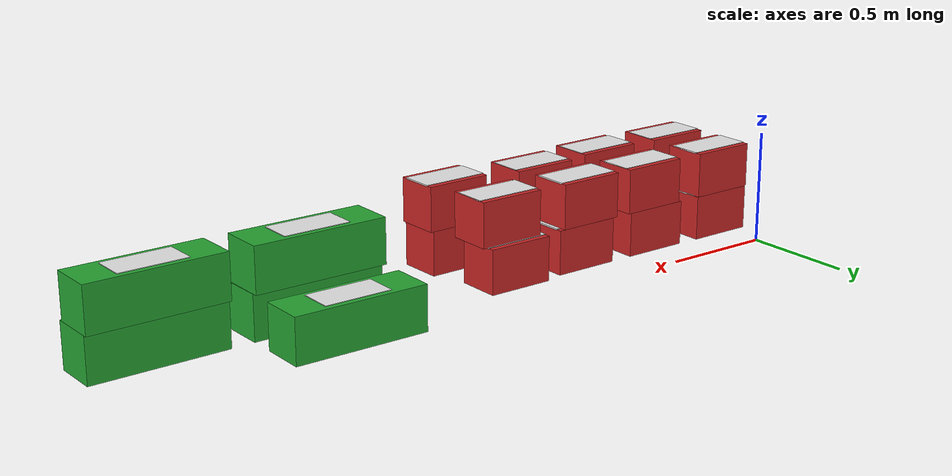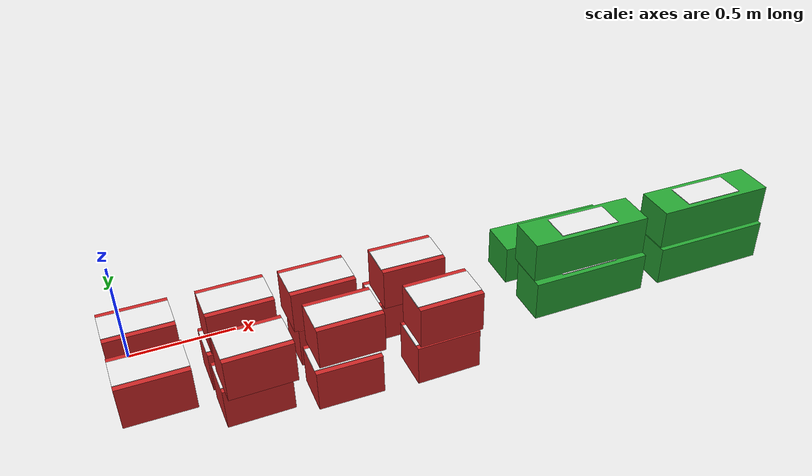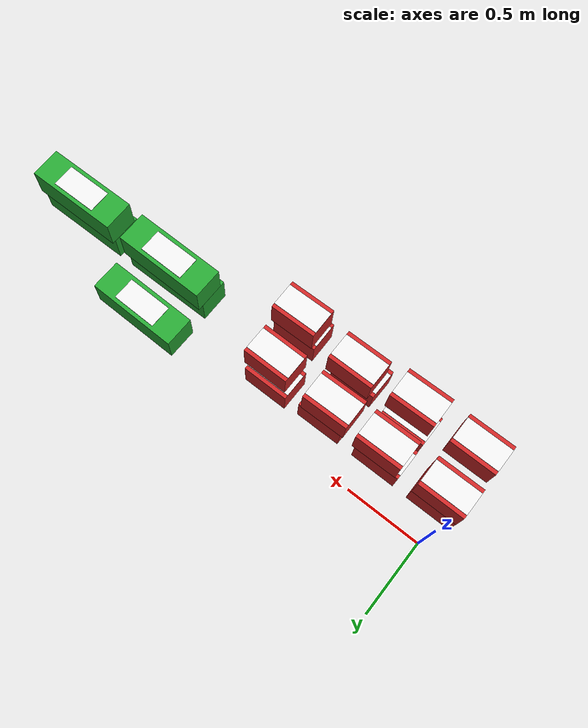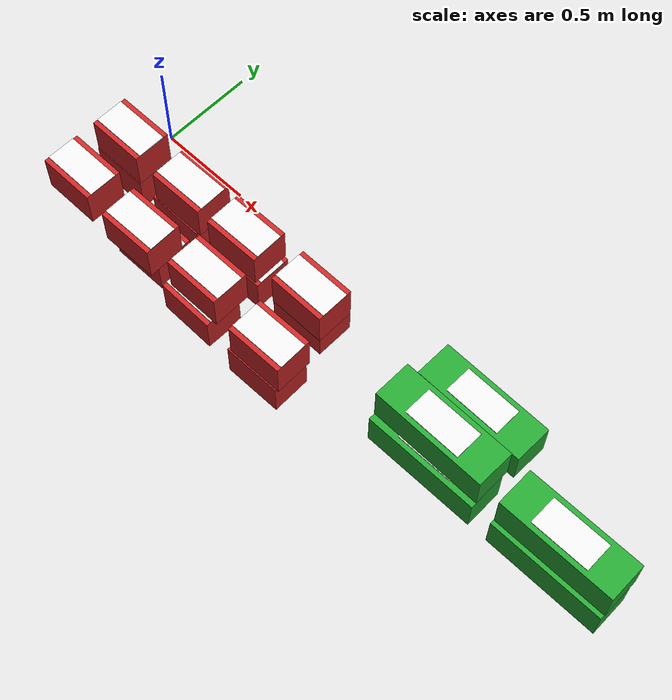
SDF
<sdf version="1.6">
 <world name="default">
  <model name="brick_red_0">
   <static>1</static>
   <link name="link">
    <pose>0 0 0.1 0 -0 0</pose>
    <inertial>
     <mass>1</mass>
     <inertia>
      <ixx>0.00252984</ixx>
      <ixy>0</ixy>
      <ixz>0</ixz>
      <iyy>0.046802</iyy>
      <iyz>0</iyz>
      <izz>0.046802</izz>
     </inertia>
    </inertial>
    <visual name="main_box">
     <geometry><box><size>0.3 0.2 0.2</size></box></geometry>
     <material>
      <script><uri>file://media/materials/scripts/gazebo.material</uri><name>Gazebo/Red</name></script>
     </material>
    </visual>
    <visual name="white_plate">
     <pose>0 0 0.1 0 -0 0</pose>
     <geometry><box><size>0.3 0.15 0.006</size></box></geometry>
     <material>
      <script><uri>file://media/materials/scripts/gazebo.material</uri><name>Gazebo/White</name></script>
     </material>
    </visual>
    <collision name="collision"><geometry><box><size>0.3 0.2 0.2</size></box></geometry></collision>
   </link>
   <pose>0.059245 -0.274277 -0 0 -0 0.000913</pose>
  </model>
  <model name="brick_red_1">
   <static>1</static>
   <link name="link">
    <pose>0 0 0.1 0 -0 0</pose>
    <inertial>
     <mass>1</mass>
     <inertia>
      <ixx>0.00252984</ixx>
      <ixy>0</ixy>
      <ixz>0</ixz>
      <iyy>0.046802</iyy>
      <iyz>0</iyz>
      <izz>0.046802</izz>
     </inertia>
    </inertial>
    <visual name="main_box">
     <geometry><box><size>0.3 0.2 0.2</size></box></geometry>
     <material>
      <script><uri>file://media/materials/scripts/gazebo.material</uri><name>Gazebo/Red</name></script>
     </material>
    </visual>
    <visual name="white_plate">
     <pose>0 0 0.1 0 -0 0</pose>
     <geometry><box><size>0.3 0.15 0.006</size></box></geometry>
     <material>
      <script><uri>file://media/materials/scripts/gazebo.material</uri><name>Gazebo/White</name></script>
     </material>
    </visual>
    <collision name="collision"><geometry><box><size>0.3 0.2 0.2</size></box></geometry></collision>
   </link>
   <pose>0.059245 -0.270682 0.202 0 -0 0.00164</pose>
  </model>
  <model name="brick_red_3">
   <static>1</static>
   <link name="link">
    <pose>0 0 0.1 0 -0 0</pose>
    <inertial>
     <mass>1</mass>
     <inertia>
      <ixx>0.00252984</ixx>
      <ixy>0</ixy>
      <ixz>0</ixz>
      <iyy>0.046802</iyy>
      <iyz>0</iyz>
      <izz>0.046802</izz>
     </inertia>
    </inertial>
    <visual name="main_box">
     <geometry><box><size>0.3 0.2 0.2</size></box></geometry>
     <material>
      <script><uri>file://media/materials/scripts/gazebo.material</uri><name>Gazebo/Red</name></script>
     </material>
    </visual>
    <visual name="white_plate">
     <pose>0 0 0.1 0 -0 0</pose>
     <geometry><box><size>0.3 0.15 0.006</size></box></geometry>
     <material>
      <script><uri>file://media/materials/scripts/gazebo.material</uri><name>Gazebo/White</name></script>
     </material>
    </visual>
    <collision name="collision"><geometry><box><size>0.3 0.2 0.2</size></box></geometry></collision>
   </link>
   <pose>0.059245 -0.573208 0.202 0 0 -0.000976</pose>
  </model>
  <model name="brick_red_6">
   <static>1</static>
   <link name="link">
    <pose>0 0 0.1 0 -0 0</pose>
    <inertial>
     <mass>1</mass>
     <inertia>
      <ixx>0.00252984</ixx>
      <ixy>0</ixy>
      <ixz>0</ixz>
      <iyy>0.046802</iyy>
      <iyz>0</iyz>
      <izz>0.046802</izz>
     </inertia>
    </inertial>
    <visual name="main_box">
     <geometry><box><size>0.3 0.2 0.2</size></box></geometry>
     <material>
      <script><uri>file://media/materials/scripts/gazebo.material</uri><name>Gazebo/Red</name></script>
     </material>
    </visual>
    <visual name="white_plate">
     <pose>0 0 0.1 0 -0 0</pose>
     <geometry><box><size>0.3 0.15 0.006</size></box></geometry>
     <material>
      <script><uri>file://media/materials/scripts/gazebo.material</uri><name>Gazebo/White</name></script>
     </material>
    </visual>
    <collision name="collision"><geometry><box><size>0.3 0.2 0.2</size></box></geometry></collision>
   </link>
   <pose>0.458665 -0.278626 0 0 0 -0.000217</pose>
  </model>
  <model name="brick_red_7">
   <static>1</static>
   <link name="link">
    <pose>0 0 0.1 0 -0 0</pose>
    <inertial>
     <mass>1</mass>
     <inertia>
      <ixx>0.00252984</ixx>
      <ixy>0</ixy>
      <ixz>0</ixz>
      <iyy>0.046802</iyy>
      <iyz>0</iyz>
      <izz>0.046802</izz>
     </inertia>
    </inertial>
    <visual name="main_box">
     <geometry><box><size>0.3 0.2 0.2</size></box></geometry>
     <material>
      <script><uri>file://media/materials/scripts/gazebo.material</uri><name>Gazebo/Red</name></script>
     </material>
    </visual>
    <visual name="white_plate">
     <pose>0 0 0.1 0 -0 0</pose>
     <geometry><box><size>0.3 0.15 0.006</size></box></geometry>
     <material>
      <script><uri>file://media/materials/scripts/gazebo.material</uri><name>Gazebo/White</name></script>
     </material>
    </visual>
    <collision name="collision"><geometry><box><size>0.3 0.2 0.2</size></box></geometry></collision>
   </link>
   <pose>0.477688 -0.273226 0.202 0 -0 0.009959</pose>
  </model>
  <model name="brick_red_8">
   <static>1</static>
   <link name="link">
    <pose>0 0 0.1 0 -0 0</pose>
    <inertial>
     <mass>1</mass>
     <inertia>
      <ixx>0.00252984</ixx>
      <ixy>0</ixy>
      <ixz>0</ixz>
      <iyy>0.046802</iyy>
      <iyz>0</iyz>
      <izz>0.046802</izz>
     </inertia>
    </inertial>
    <visual name="main_box">
     <geometry><box><size>0.3 0.2 0.2</size></box></geometry>
     <material>
      <script><uri>file://media/materials/scripts/gazebo.material</uri><name>Gazebo/Red</name></script>
     </material>
    </visual>
    <visual name="white_plate">
     <pose>0 0 0.1 0 -0 0</pose>
     <geometry><box><size>0.3 0.15 0.006</size></box></geometry>
     <material>
      <script><uri>file://media/materials/scripts/gazebo.material</uri><name>Gazebo/White</name></script>
     </material>
    </visual>
    <collision name="collision"><geometry><box><size>0.3 0.2 0.2</size></box></geometry></collision>
   </link>
   <pose>0.460918 -0.526437 -0 0 -0 0.006094</pose>
  </model>
  <model name="brick_red_9">
   <static>1</static>
   <link name="link">
    <pose>0 0 0.1 0 -0 0</pose>
    <inertial>
     <mass>1</mass>
     <inertia>
      <ixx>0.00252984</ixx>
      <ixy>0</ixy>
      <ixz>0</ixz>
      <iyy>0.046802</iyy>
      <iyz>0</iyz>
      <izz>0.046802</izz>
     </inertia>
    </inertial>
    <visual name="main_box">
     <geometry><box><size>0.3 0.2 0.2</size></box></geometry>
     <material>
      <script><uri>file://media/materials/scripts/gazebo.material</uri><name>Gazebo/Red</name></script>
     </material>
    </visual>
    <visual name="white_plate">
     <pose>0 0 0.1 0 -0 0</pose>
     <geometry><box><size>0.3 0.15 0.006</size></box></geometry>
     <material>
      <script><uri>file://media/materials/scripts/gazebo.material</uri><name>Gazebo/White</name></script>
     </material>
    </visual>
    <collision name="collision"><geometry><box><size>0.3 0.2 0.2</size></box></geometry></collision>
   </link>
   <pose>0.473201 -0.583135 0.202 0 -0 0.014849</pose>
  </model>
  <model name="brick_red_12">
   <static>1</static>
   <link name="link">
    <pose>0 0 0.1 0 -0 0</pose>
    <inertial>
     <mass>1</mass>
     <inertia>
      <ixx>0.00252984</ixx>
      <ixy>0</ixy>
      <ixz>0</ixz>
      <iyy>0.046802</iyy>
      <iyz>0</iyz>
      <izz>0.046802</izz>
     </inertia>
    </inertial>
    <visual name="main_box">
     <geometry><box><size>0.3 0.2 0.2</size></box></geometry>
     <material>
      <script><uri>file://media/materials/scripts/gazebo.material</uri><name>Gazebo/Red</name></script>
     </material>
    </visual>
    <visual name="white_plate">
     <pose>0 0 0.1 0 -0 0</pose>
     <geometry><box><size>0.3 0.15 0.006</size></box></geometry>
     <material>
      <script><uri>file://media/materials/scripts/gazebo.material</uri><name>Gazebo/White</name></script>
     </material>
    </visual>
    <collision name="collision"><geometry><box><size>0.3 0.2 0.2</size></box></geometry></collision>
   </link>
   <pose>0.863916 -0.277629 -0 0 -0 0.005086</pose>
  </model>
  <model name="brick_red_13">
   <static>1</static>
   <link name="link">
    <pose>0 0 0.1 0 -0 0</pose>
    <inertial>
     <mass>1</mass>
     <inertia>
      <ixx>0.00252984</ixx>
      <ixy>0</ixy>
      <ixz>0</ixz>
      <iyy>0.046802</iyy>
      <iyz>0</iyz>
      <izz>0.046802</izz>
     </inertia>
    </inertial>
    <visual name="main_box">
     <geometry><box><size>0.3 0.2 0.2</size></box></geometry>
     <material>
      <script><uri>file://media/materials/scripts/gazebo.material</uri><name>Gazebo/Red</name></script>
     </material>
    </visual>
    <visual name="white_plate">
     <pose>0 0 0.1 0 -0 0</pose>
     <geometry><box><size>0.3 0.15 0.006</size></box></geometry>
     <material>
      <script><uri>file://media/materials/scripts/gazebo.material</uri><name>Gazebo/White</name></script>
     </material>
    </visual>
    <collision name="collision"><geometry><box><size>0.3 0.2 0.2</size></box></geometry></collision>
   </link>
   <pose>0.845682 -0.273405 0.202 0 -0 0.013202</pose>
  </model>
  <model name="brick_red_14">
   <static>1</static>
   <link name="link">
    <pose>0 0 0.1 0 -0 0</pose>
    <inertial>
     <mass>1</mass>
     <inertia>
      <ixx>0.00252984</ixx>
      <ixy>0</ixy>
      <ixz>0</ixz>
      <iyy>0.046802</iyy>
      <iyz>0</iyz>
      <izz>0.046802</izz>
     </inertia>
    </inertial>
    <visual name="main_box">
     <geometry><box><size>0.3 0.2 0.2</size></box></geometry>
     <material>
      <script><uri>file://media/materials/scripts/gazebo.material</uri><name>Gazebo/Red</name></script>
     </material>
    </visual>
    <visual name="white_plate">
     <pose>0 0 0.1 0 -0 0</pose>
     <geometry><box><size>0.3 0.15 0.006</size></box></geometry>
     <material>
      <script><uri>file://media/materials/scripts/gazebo.material</uri><name>Gazebo/White</name></script>
     </material>
    </visual>
    <collision name="collision"><geometry><box><size>0.3 0.2 0.2</size></box></geometry></collision>
   </link>
   <pose>0.849971 -0.581345 -0 0 0 -0.010727</pose>
  </model>
  <model name="brick_red_15">
   <static>1</static>
   <link name="link">
    <pose>0 0 0.1 0 -0 0</pose>
    <inertial>
     <mass>1</mass>
     <inertia>
      <ixx>0.00252984</ixx>
      <ixy>0</ixy>
      <ixz>0</ixz>
      <iyy>0.046802</iyy>
      <iyz>0</iyz>
      <izz>0.046802</izz>
     </inertia>
    </inertial>
    <visual name="main_box">
     <geometry><box><size>0.3 0.2 0.2</size></box></geometry>
     <material>
      <script><uri>file://media/materials/scripts/gazebo.material</uri><name>Gazebo/Red</name></script>
     </material>
    </visual>
    <visual name="white_plate">
     <pose>0 0 0.1 0 -0 0</pose>
     <geometry><box><size>0.3 0.15 0.006</size></box></geometry>
     <material>
      <script><uri>file://media/materials/scripts/gazebo.material</uri><name>Gazebo/White</name></script>
     </material>
    </visual>
    <collision name="collision"><geometry><box><size>0.3 0.2 0.2</size></box></geometry></collision>
   </link>
   <pose>0.875162 -0.547991 0.202 0 -0 0.003486</pose>
  </model>
  <model name="brick_red_16">
   <static>1</static>
   <link name="link">
    <pose>0 0 0.1 0 -0 0</pose>
    <inertial>
     <mass>1</mass>
     <inertia>
      <ixx>0.00252984</ixx>
      <ixy>0</ixy>
      <ixz>0</ixz>
      <iyy>0.046802</iyy>
      <iyz>0</iyz>
      <izz>0.046802</izz>
     </inertia>
    </inertial>
    <visual name="main_box">
     <geometry><box><size>0.3 0.2 0.2</size></box></geometry>
     <material>
      <script><uri>file://media/materials/scripts/gazebo.material</uri><name>Gazebo/Red</name></script>
     </material>
    </visual>
    <visual name="white_plate">
     <pose>0 0 0.1 0 -0 0</pose>
     <geometry><box><size>0.3 0.15 0.006</size></box></geometry>
     <material>
      <script><uri>file://media/materials/scripts/gazebo.material</uri><name>Gazebo/White</name></script>
     </material>
    </visual>
    <collision name="collision"><geometry><box><size>0.3 0.2 0.2</size></box></geometry></collision>
   </link>
   <pose>1.24497 -0.253858 0 0 -0 0.000118</pose>
  </model>
  <model name="brick_red_17">
   <static>1</static>
   <link name="link">
    <pose>0 0 0.1 0 -0 0</pose>
    <inertial>
     <mass>1</mass>
     <inertia>
      <ixx>0.00252984</ixx>
      <ixy>0</ixy>
      <ixz>0</ixz>
      <iyy>0.046802</iyy>
      <iyz>0</iyz>
      <izz>0.046802</izz>
     </inertia>
    </inertial>
    <visual name="main_box">
     <geometry><box><size>0.3 0.2 0.2</size></box></geometry>
     <material>
      <script><uri>file://media/materials/scripts/gazebo.material</uri><name>Gazebo/Red</name></script>
     </material>
    </visual>
    <visual name="white_plate">
     <pose>0 0 0.1 0 -0 0</pose>
     <geometry><box><size>0.3 0.15 0.006</size></box></geometry>
     <material>
      <script><uri>file://media/materials/scripts/gazebo.material</uri><name>Gazebo/White</name></script>
     </material>
    </visual>
    <collision name="collision"><geometry><box><size>0.3 0.2 0.2</size></box></geometry></collision>
   </link>
   <pose>1.2709 -0.281558 0.202 0 0 -0.001797</pose>
  </model>
  <model name="brick_red_18">
   <static>1</static>
   <link name="link">
    <pose>0 0 0.1 0 -0 0</pose>
    <inertial>
     <mass>1</mass>
     <inertia>
      <ixx>0.00252984</ixx>
      <ixy>0</ixy>
      <ixz>0</ixz>
      <iyy>0.046802</iyy>
      <iyz>0</iyz>
      <izz>0.046802</izz>
     </inertia>
    </inertial>
    <visual name="main_box">
     <geometry><box><size>0.3 0.2 0.2</size></box></geometry>
     <material>
      <script><uri>file://media/materials/scripts/gazebo.material</uri><name>Gazebo/Red</name></script>
     </material>
    </visual>
    <visual name="white_plate">
     <pose>0 0 0.1 0 -0 0</pose>
     <geometry><box><size>0.3 0.15 0.006</size></box></geometry>
     <material>
      <script><uri>file://media/materials/scripts/gazebo.material</uri><name>Gazebo/White</name></script>
     </material>
    </visual>
    <collision name="collision"><geometry><box><size>0.3 0.2 0.2</size></box></geometry></collision>
   </link>
   <pose>1.30078 -0.598432 0 0 -0 0.01377</pose>
  </model>
  <model name="brick_red_19">
   <static>1</static>
   <link name="link">
    <pose>0 0 0.1 0 -0 0</pose>
    <inertial>
     <mass>1</mass>
     <inertia>
      <ixx>0.00252984</ixx>
      <ixy>0</ixy>
      <ixz>0</ixz>
      <iyy>0.046802</iyy>
      <iyz>0</iyz>
      <izz>0.046802</izz>
     </inertia>
    </inertial>
    <visual name="main_box">
     <geometry><box><size>0.3 0.2 0.2</size></box></geometry>
     <material>
      <script><uri>file://media/materials/scripts/gazebo.material</uri><name>Gazebo/Red</name></script>
     </material>
    </visual>
    <visual name="white_plate">
     <pose>0 0 0.1 0 -0 0</pose>
     <geometry><box><size>0.3 0.15 0.006</size></box></geometry>
     <material>
      <script><uri>file://media/materials/scripts/gazebo.material</uri><name>Gazebo/White</name></script>
     </material>
    </visual>
    <collision name="collision"><geometry><box><size>0.3 0.2 0.2</size></box></geometry></collision>
   </link>
   <pose>1.31711 -0.592665 0.202 0 -0 0.012895</pose>
  </model>
  <model name="brick_green_20">
   <static>1</static>
   <link name="link">
    <pose>0 0 0.1 0 -0 0</pose>
    <inertial>
     <mass>1</mass>
     <inertia>
      <ixx>0.00252984</ixx>
      <ixy>0</ixy>
      <ixz>0</ixz>
      <iyy>0.046802</iyy>
      <iyz>0</iyz>
      <izz>0.046802</izz>
     </inertia>
    </inertial>
    <visual name="main_box">
     <geometry><box><size>0.6 0.2 0.2</size></box></geometry>
     <material>
      <script><uri>file://media/materials/scripts/gazebo.material</uri><name>Gazebo/Green</name></script>
     </material>
    </visual>
    <visual name="white_plate">
     <pose>0 0 0.1 0 -0 0</pose>
     <geometry><box><size>0.3 0.15 0.006</size></box></geometry>
     <material>
      <script><uri>file://media/materials/scripts/gazebo.material</uri><name>Gazebo/White</name></script>
     </material>
    </visual>
    <collision name="collision"><geometry><box><size>0.6 0.2 0.2</size></box></geometry></collision>
   </link>
   <pose>2.14444 -0.090797 -0 0 0 -0.011736</pose>
  </model>
  <model name="brick_green_21">
   <static>1</static>
   <link name="link">
    <pose>0 0 0.1 0 -0 0</pose>
    <inertial>
     <mass>1</mass>
     <inertia>
      <ixx>0.00252984</ixx>
      <ixy>0</ixy>
      <ixz>0</ixz>
      <iyy>0.046802</iyy>
      <iyz>0</iyz>
      <izz>0.046802</izz>
     </inertia>
    </inertial>
    <visual name="main_box">
     <geometry><box><size>0.6 0.2 0.2</size></box></geometry>
     <material>
      <script><uri>file://media/materials/scripts/gazebo.material</uri><name>Gazebo/Green</name></script>
     </material>
    </visual>
    <visual name="white_plate">
     <pose>0 0 0.1 0 -0 0</pose>
     <geometry><box><size>0.3 0.15 0.006</size></box></geometry>
     <material>
      <script><uri>file://media/materials/scripts/gazebo.material</uri><name>Gazebo/White</name></script>
     </material>
    </visual>
    <collision name="collision"><geometry><box><size>0.6 0.2 0.2</size></box></geometry></collision>
   </link>
   <pose>2.14444 -0.403337 0 0 -0 0.004379</pose>
  </model>
  <model name="brick_green_22">
   <static>1</static>
   <link name="link">
    <pose>0 0 0.1 0 -0 0</pose>
    <inertial>
     <mass>1</mass>
     <inertia>
      <ixx>0.00252984</ixx>
      <ixy>0</ixy>
      <ixz>0</ixz>
      <iyy>0.046802</iyy>
      <iyz>0</iyz>
      <izz>0.046802</izz>
     </inertia>
    </inertial>
    <visual name="main_box">
     <geometry><box><size>0.6 0.2 0.2</size></box></geometry>
     <material>
      <script><uri>file://media/materials/scripts/gazebo.material</uri><name>Gazebo/Green</name></script>
     </material>
    </visual>
    <visual name="white_plate">
     <pose>0 0 0.1 0 -0 0</pose>
     <geometry><box><size>0.3 0.15 0.006</size></box></geometry>
     <material>
      <script><uri>file://media/materials/scripts/gazebo.material</uri><name>Gazebo/White</name></script>
     </material>
    </visual>
    <collision name="collision"><geometry><box><size>0.6 0.2 0.2</size></box></geometry></collision>
   </link>
   <pose>2.14444 -0.372656 0.202 0 0 -0.007074</pose>
  </model>
  <model name="brick_green_26">
   <static>1</static>
   <link name="link">
    <pose>0 0 0.1 0 -0 0</pose>
    <inertial>
     <mass>1</mass>
     <inertia>
      <ixx>0.00252984</ixx>
      <ixy>0</ixy>
      <ixz>0</ixz>
      <iyy>0.046802</iyy>
      <iyz>0</iyz>
      <izz>0.046802</izz>
     </inertia>
    </inertial>
    <visual name="main_box">
     <geometry><box><size>0.6 0.2 0.2</size></box></geometry>
     <material>
      <script><uri>file://media/materials/scripts/gazebo.material</uri><name>Gazebo/Green</name></script>
     </material>
    </visual>
    <visual name="white_plate">
     <pose>0 0 0.1 0 -0 0</pose>
     <geometry><box><size>0.3 0.15 0.006</size></box></geometry>
     <material>
      <script><uri>file://media/materials/scripts/gazebo.material</uri><name>Gazebo/White</name></script>
     </material>
    </visual>
    <collision name="collision"><geometry><box><size>0.6 0.2 0.2</size></box></geometry></collision>
   </link>
   <pose>2.8464 -0.398579 0 0 -0 0.005057</pose>
  </model>
  <model name="brick_green_27">
   <static>1</static>
   <link name="link">
    <pose>0 0 0.1 0 -0 0</pose>
    <inertial>
     <mass>1</mass>
     <inertia>
      <ixx>0.00252984</ixx>
      <ixy>0</ixy>
      <ixz>0</ixz>
      <iyy>0.046802</iyy>
      <iyz>0</iyz>
      <izz>0.046802</izz>
     </inertia>
    </inertial>
    <visual name="main_box">
     <geometry><box><size>0.6 0.2 0.2</size></box></geometry>
     <material>
      <script><uri>file://media/materials/scripts/gazebo.material</uri><name>Gazebo/Green</name></script>
     </material>
    </visual>
    <visual name="white_plate">
     <pose>0 0 0.1 0 -0 0</pose>
     <geometry><box><size>0.3 0.15 0.006</size></box></geometry>
     <material>
      <script><uri>file://media/materials/scripts/gazebo.material</uri><name>Gazebo/White</name></script>
     </material>
    </visual>
    <collision name="collision"><geometry><box><size>0.6 0.2 0.2</size></box></geometry></collision>
   </link>
   <pose>2.84819 -0.377098 0.202 0 -0 0.004954</pose>
  </model>
 </world>
</sdf>
